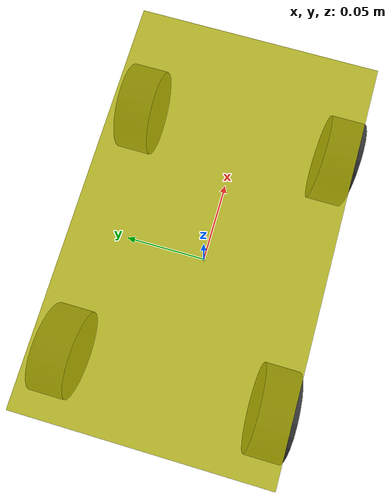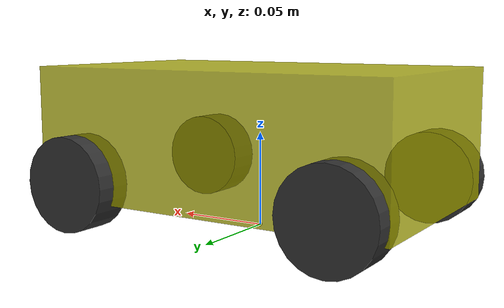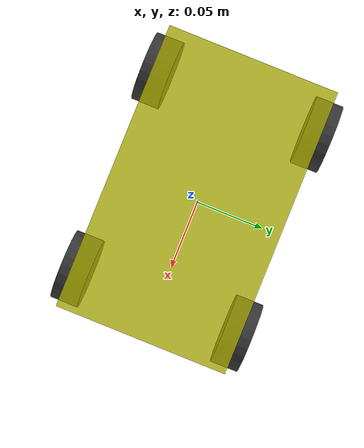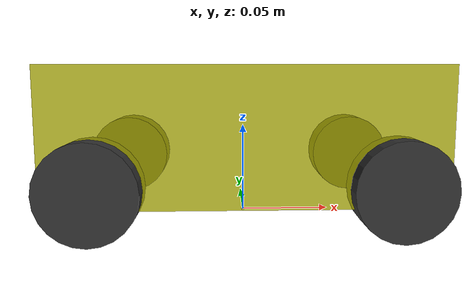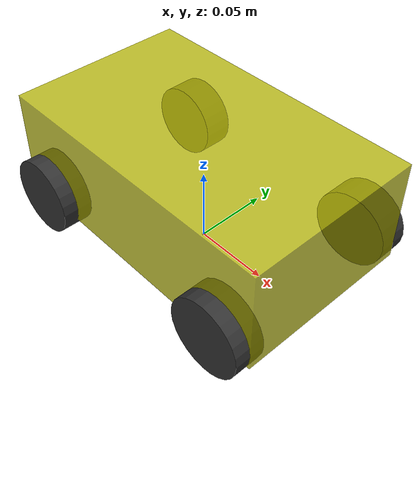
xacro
<robot xmlns:xacro="http://wiki.ros.org/xacro">
    <!-- PI 值 -->
    <xacro:property name="PI" value="3.1416"/>
    <!-- 定义车辆参数 -->
    <!-- 车体长宽高 -->
    <xacro:property name="base_link_x" value="0.2"/>
    <xacro:property name="base_link_y" value="0.12"/>
    <xacro:property name="base_link_z" value="0.07"/>
    <!-- 离地间距 -->
    <xacro:property name="distance" value="0.015"/>
    <!-- 车轮半径 宽度 -->
    <xacro:property name="wheel_radius" value="0.025"/>
    <xacro:property name="wheel_length" value="0.02"/>

    <!-- Gazebo 新增开始：Gazebo 物理参数，用于给 link 生成 inertial -->
    <xacro:property name="base_footprint_radius" value="0.001"/>
    <xacro:property name="base_footprint_mass" value="0.001"/>
    <xacro:property name="base_link_mass" value="1.0"/>
    <xacro:property name="wheel_mass" value="0.05"/>
    <xacro:property name="wheel_mu1" value="1.0"/>
    <xacro:property name="wheel_mu2" value="0.05"/>
    <!-- Gazebo 新增结束：Gazebo 物理参数 -->

    <!-- Gazebo 新增开始：球体惯性宏，给 base_footprint 使用 -->
    <xacro:macro name="sphere_inertial" params="mass radius">
        <inertial>
            <mass value="${mass}"/>
            <inertia
                ixx="${2.0 / 5.0 * mass * radius * radius}" ixy="0.0" ixz="0.0"
                iyy="${2.0 / 5.0 * mass * radius * radius}" iyz="0.0"
                izz="${2.0 / 5.0 * mass * radius * radius}"/>
        </inertial>
    </xacro:macro>
    <!-- Gazebo 新增结束：球体惯性宏 -->

    <!-- Gazebo 新增开始：长方体惯性宏，给 base_link 使用 -->
    <xacro:macro name="box_inertial" params="mass x y z">
        <inertial>
            <mass value="${mass}"/>
            <inertia
                ixx="${mass / 12.0 * (y * y + z * z)}" ixy="0.0" ixz="0.0"
                iyy="${mass / 12.0 * (x * x + z * z)}" iyz="0.0"
                izz="${mass / 12.0 * (x * x + y * y)}"/>
        </inertial>
    </xacro:macro>
    <!-- Gazebo 新增结束：长方体惯性宏 -->

    <!-- Gazebo 新增开始：圆柱车轮惯性宏，给四个轮子使用 -->
    <xacro:macro name="wheel_inertial" params="mass radius length">
        <inertial>
            <mass value="${mass}"/>
            <inertia
                ixx="${mass / 12.0 * (3.0 * radius * radius + length * length)}" ixy="0.0" ixz="0.0"
                iyy="${mass / 2.0 * radius * radius}" iyz="0.0"
                izz="${mass / 12.0 * (3.0 * radius * radius + length * length)}"/>
        </inertial>
    </xacro:macro>
    <!-- Gazebo 新增结束：圆柱车轮惯性宏 -->

    <!-- 定义颜色 -->
    <material name="yellow">
        <color rgba="0.7 0.7 0 0.8" />
    </material>
    <material name="red">
        <color rgba="0.8 0.1 0.1 0.8" />
    </material>
    <material name="gray">
        <color rgba="0.2 0.2 0.2 0.95" />
      </material>
    <!-- 定义 base_footprint -->
    <link name="base_footprint">
        <visual>
            <geometry>
                <!-- Codex 修改：把原来的固定 0.001 改成上面新增的参数 -->
                <sphere radius="${base_footprint_radius}"/>
            </geometry>
        </visual>
        <!-- Gazebo 新增：base_footprint 的惯性，避免 Gazebo 转 SDF 时丢弃根 link -->
        <xacro:sphere_inertial mass="${base_footprint_mass}" radius="${base_footprint_radius}"/>
    </link>

    <!-- 定义 base_link -->
    <link name="base_link">
        <visual>
            <!-- 形状 -->
            <geometry>
                <box size="${base_link_x} ${base_link_y} ${base_link_z}" />
            </geometry>
            <origin xyz="0 0 0" rpy="0 0 0" />
            <material name="yellow"/>
        </visual>
        <!-- Gazebo 新增开始：base_link 碰撞体，Gazebo 物理仿真需要 collision -->
        <collision>
            <geometry>
                <box size="${base_link_x} ${base_link_y} ${base_link_z}" />
            </geometry>
            <origin xyz="0 0 0" rpy="0 0 0" />
        </collision>
        <!-- Gazebo 新增结束：base_link 碰撞体 -->
        <!-- Gazebo 新增：base_link 惯性，Gazebo 物理仿真需要 inertial -->
        <xacro:box_inertial mass="${base_link_mass}" x="${base_link_x}" y="${base_link_y}" z="${base_link_z}"/>
    </link>
    <joint name="baselink2basefootprint" type="fixed">
        <parent link="base_footprint"/>
        <child link="base_link"/>
        <origin xyz="0.0 0.0 ${distance + base_link_z / 2}"/>
    </joint>
    <!-- 车轮宏定义 -->
    <xacro:macro name="wheel_func" params="wheel_name is_front is_left" >
        <link name="${wheel_name}_wheel">
            <visual>
                <geometry>
                    <cylinder radius="${wheel_radius}" length="${wheel_length}" />
                </geometry>
                <origin xyz="0 0 0" rpy="${PI / 2} 0 0" />
                <material name="gray"/>
            </visual>
            <!-- Gazebo 新增开始：车轮碰撞体，四个轮子都会通过这个宏生成 -->
            <collision>
                <geometry>
                    <cylinder radius="${wheel_radius}" length="${wheel_length}" />
                </geometry>
                <origin xyz="0 0 0" rpy="${PI / 2} 0 0" />
            </collision>
            <!-- Gazebo 新增结束：车轮碰撞体 -->
            <!-- Gazebo 新增：车轮惯性，四个轮子都会通过这个宏生成 -->
            <xacro:wheel_inertial mass="${wheel_mass}" radius="${wheel_radius}" length="${wheel_length}"/>
        </link>
        <joint name="${wheel_name}2baselink" type="continuous">
            <parent link="base_link"  />
            <child link="${wheel_name}_wheel" />
            <origin xyz="${(base_link_x / 2 - wheel_radius) * is_front} ${base_link_y / 2 * is_left} ${(base_link_z / 2 + distance - wheel_radius) * -1}" rpy="0 0 0" />
            <axis xyz="0 1 0" />
        </joint>
        <!-- Gazebo 新增：四轮差速原地转弯需要轮胎横向滑移；降低 mu2 可以减少 Gazebo 中的卡顿和抖动 -->
        <gazebo reference="${wheel_name}_wheel">
            <mu1>${wheel_mu1}</mu1>
            <mu2>${wheel_mu2}</mu2>
            <fdir1>1 0 0</fdir1>
        </gazebo>
    </xacro:macro>
    <!-- 车轮宏调用 -->
    <xacro:wheel_func wheel_name="left_front" is_front="1" is_left="1" />
    <xacro:wheel_func wheel_name="left_back" is_front="-1" is_left="1" />
    <xacro:wheel_func wheel_name="right_front" is_front="1" is_left="-1" />
    <xacro:wheel_func wheel_name="right_back" is_front="-1" is_left="-1" />
</robot>
